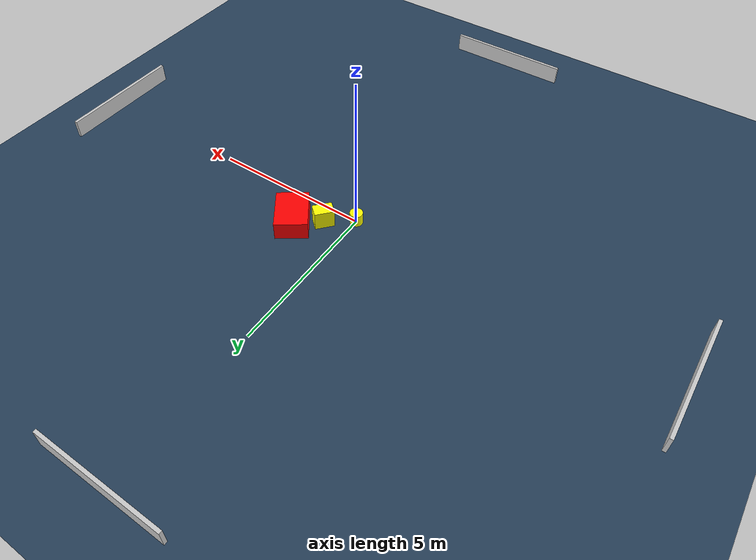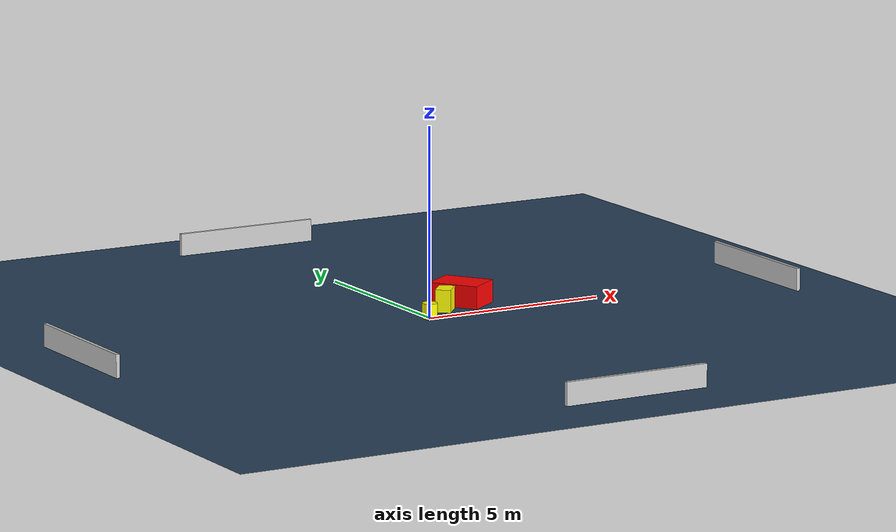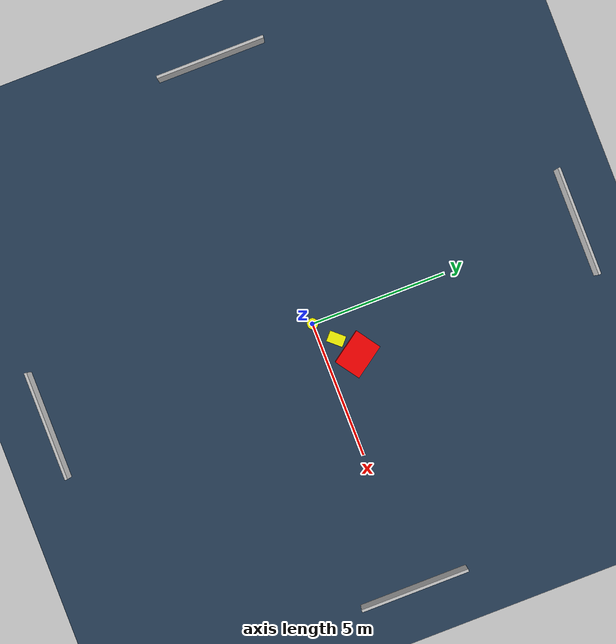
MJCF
<?xml version="1.0" ?>
<mujoco model="generated_environment">
  <option timestep="0.01" integrator="RK4" cone="elliptic"/>
  <default>
    <geom density="1"/>
  </default>
  <asset>
    <texture builtin="gradient" height="3072" name="skybox" rgb1="0.3 0.5 0.7" rgb2="0 0 0" type="skybox" width="512"/>
    <texture builtin="checker" height="300" name="groundplane" rgb1="0.2 0.3 0.4" rgb2="0.1 0.2 0.3" type="2d" width="300"/>
    <material name="groundplane" reflectance="0.2" texrepeat="5 5" texture="groundplane"/>
  </asset>
  <worldbody>
    <light dir="0 0 -1" directional="true" pos="0 0 1.5"/>
    <geom condim="3" friction="0.5 0.005 0.001" material="groundplane" name="floor" pos="0 0 0" size="0 0 0.05" type="plane"/>
    <body name="walls">
      <geom name="wall_1" condim="4" pos="-10.0 0.0 0.3" rgba="0.800000011920929 0.800000011920929 0.800000011920929 1.0" size="0.05 2.0 0.3" type="box"/>
      <geom name="wall_2" condim="4" pos="10.0 0.0 0.3" rgba="0.800000011920929 0.800000011920929 0.800000011920929 1.0" size="0.05 2.0 0.3" type="box"/>
      <geom name="wall_3" condim="4" pos="0.0 -10.0 0.3" rgba="0.800000011920929 0.800000011920929 0.800000011920929 1.0" size="2.0 0.05 0.3" type="box"/>
      <geom name="wall_4" condim="4" pos="0.0 10.0 0.3" rgba="0.800000011920929 0.800000011920929 0.800000011920929 1.0" size="2.0 0.05 0.3" type="box"/>
    </body>
    <body name="robot">
      <joint name="joint_x" type="slide" pos="0 0 0" axis="1 0 0"/>
      <joint name="joint_y" type="slide" pos="0 0 0" axis="0 1 0"/>
      <geom name="robot" type="cylinder" pos="0.0 0.0 0.2" size="0.2 0.2 0.0" mass="5.0" friction="1.0 0.005 0.0001" condim="4" rgba="1.0 1.0 0.0 1.0"/>
    </body>
    <body name="obstacle_1_movable">
      <geom name="obstacle_1_movable" condim="4" pos="0.788874240300654 0.5841826257677472 0.3" euler="0 0 318.4753619099928" friction="0.0 0.005 0.001" rgba="1.0 1.0 0.0 1.0" size="0.20090355626823347 0.3004363220259404 0.3" type="box" mass="0.1"/>
      <joint type="free"/>
    </body>
    <body name="obstacle_2_static">
      <geom name="obstacle_2_static" condim="4" pos="1.568140396304905 1.0918741576198139 0.3" euler="0 0 124.91750028957426" friction="0.0 0.005 0.001" rgba="1.0 0.0 0.0 1.0" size="0.6653046145960723 0.4994358220619055 0.3" type="box"/>
    </body>
  </worldbody>
  <actuator>
    <motor name="actuator_x" joint="joint_x" gear="1" ctrlrange="-1 1"/>
    <motor name="actuator_y" joint="joint_y" gear="1" ctrlrange="-1 1"/>
  </actuator>
</mujoco>
